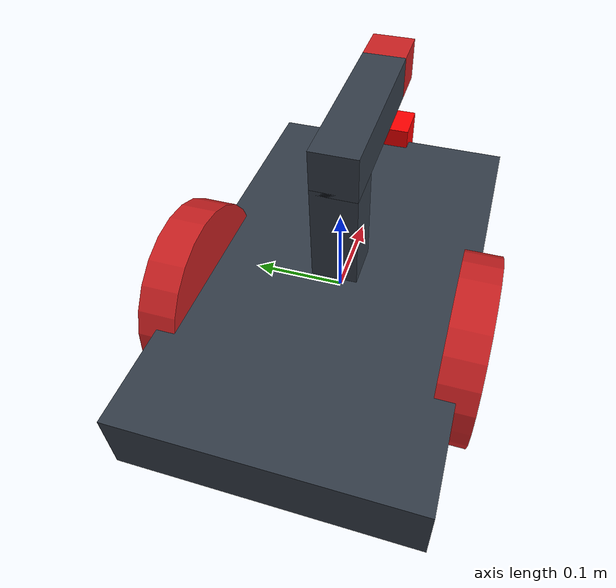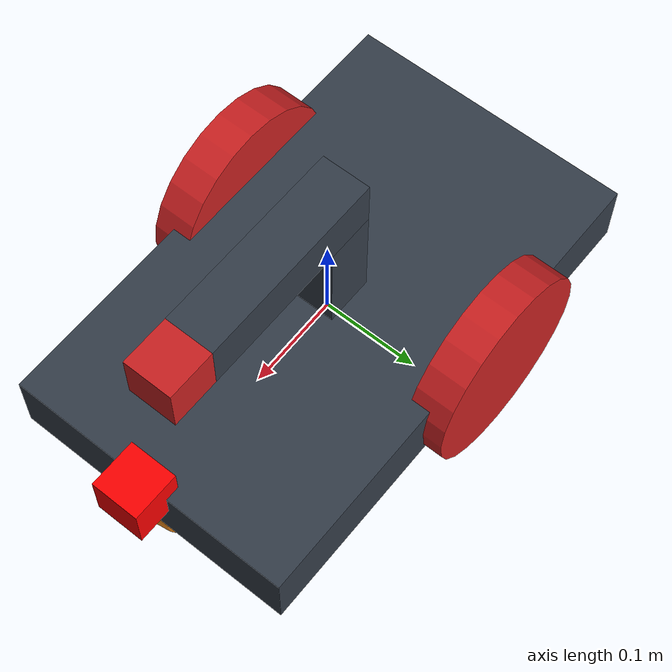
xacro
<?xml version="1.0"?>
<robot xmlns:xacro="http://www.ros.org/wiki/xacro" name="robot4_xacro">
<xacro:include filename="$(find assignment2_exprob)/urdf/robot4.gazebo"/>

	<xacro:property name="length_wheel" value="0.04" />
	<xacro:property name="radius_wheel" value="0.1" />

	<xacro:macro name="default_inertial" params="mass">
               <inertial>
                       <mass value="${mass}" />
                       <origin rpy="0 1.5707 1.5707" xyz="0 0 0"/>
                       <inertia ixx="0.000526666666667" ixy="0" ixz="0" iyy="0.000526666666667" iyz="0" izz="0.001"/>
               </inertial>
	</xacro:macro>

    <xacro:macro name="wheel_geometry">
		<geometry>
       			<cylinder length="${length_wheel}" radius="${radius_wheel}"/>
     	</geometry>
	</xacro:macro>

  <material name="black">
    <color rgba="0.0 0.0 0.0 1.0"/>
  </material>
  <material name="blue">
    <color rgba="0.203125 0.23828125 0.28515625 1.0"/>
  </material>
  <material name="green">
    <color rgba="0.0 0.8 0.0 1.0"/>
  </material>
  <material name="grey">
    <color rgba="0.2 0.2 0.2 1.0"/>
  </material>
  <material name="orange">
    <color rgba="1.0 0.423529411765 0.0392156862745 1.0"/>
  </material>
  <material name="brown">
    <color rgba="0.870588235294 0.811764705882 0.764705882353 1.0"/>
  </material>
  <material name="red">
    <color rgba="0.80078125 0.12890625 0.1328125 1.0"/>
  </material>
  <material name="white">
    <color rgba="1.0 1.0 1.0 1.0"/>
  </material>

	  <link name="link_chassis">
    <!-- pose and inertial -->
    <pose>0 0 0.1 0 0 0</pose>
    <inertial>
      <mass value="5"/>
      <origin rpy="0 0 0" xyz="0 0 0.1"/>
      <inertia ixx="0.0395416666667" ixy="0" ixz="0" iyy="0.106208333333" iyz="0" izz="0.106208333333"/>
    </inertial>
    <!-- body -->
    <collision name="collision_chassis">
      <geometry>
        <box size="0.5 0.3 0.07"/>
      </geometry>
    </collision>
    <visual>
      <origin rpy="0 0 0" xyz="0 0 0"/>
      <geometry>
        <box size="0.5 0.3 0.07"/>
      </geometry>
      <material name="blue"/>
    </visual>
    <!-- caster front -->
    <collision name="caster_front_collision">
      <origin rpy=" 0 0 0" xyz="0.35 0 -0.05"/>
      <geometry>
        <sphere radius="0.05"/>
      </geometry>
    </collision>
    <visual name="caster_front_visual">
      <origin rpy=" 0 0 0" xyz="0.2 0 -0.05"/>
      <geometry>
        <sphere radius="0.05"/>
      </geometry>
    </visual>
  </link>

   <link name="link_right_wheel">
    <xacro:default_inertial mass="0.2"/>
    <collision name="link_right_wheel_collision">
      <origin rpy="0 1.5707 1.5707" xyz="0 0 0"/>
      <xacro:wheel_geometry />
    </collision>
    <visual name="link_right_wheel_visual">
      <origin rpy="0 1.5707 1.5707" xyz="0 0 0"/>
      <xacro:wheel_geometry />
      <material name="red"/>
    </visual>
  </link>

   <link name="link_left_wheel">
    <xacro:default_inertial mass="0.2"/>
    <collision name="link_left_wheel_collision">
      <origin rpy="0 1.5707 1.5707" xyz="0 0 0"/>
      <xacro:wheel_geometry />
    </collision>
    <visual name="link_left_wheel_visual">
      <origin rpy="0 1.5707 1.5707" xyz="0 0 0"/>
      <xacro:wheel_geometry />
      <material name="red"/>
    </visual>
  </link>

  <joint name="joint_right_wheel" type="continuous">
    <origin rpy="0 0 0" xyz="-0.05 0.15 0"/>
    <child link="link_right_wheel"/>
    <parent link="link_chassis"/>
    <axis rpy="0 0 0" xyz="0 1 0"/>
    <limit effort="10000" velocity="1000"/>
    <joint_properties damping="1.0" friction="1.0"/>
  </joint>

  <joint name="joint_left_wheel" type="continuous">
    <origin rpy="0 0 0" xyz="-0.05 -0.15 0"/>
    <child link="link_left_wheel"/>
    <parent link="link_chassis"/>
    <axis rpy="0 0 0" xyz="0 1 0"/>
    <limit effort="10000" velocity="1000"/>
    <joint_properties damping="1.0" friction="1.0"/>
  </joint>

    <link name="support_camera_link_0">
	    <collision>
	      <origin xyz="0 0 0" rpy="0 0 0"/>
	      <geometry>
		<box size="0.05 0.05 0.18"/>
	      </geometry>
	    </collision>
	    <visual>
	      <origin xyz="0 0 0.05" rpy="0 0 0"/>
	      <geometry>
		<box size="0.05 0.05 0.18"/>
	      </geometry>
	      <material name="blue"/>

	    </visual>
	    <inertial>
	      <mass value="1e-5" />
	      <origin xyz="0 0 0.0" rpy="0 0 0"/>
	      <inertia ixx="1e-6" ixy="0" ixz="0" iyy="1e-6" iyz="0" izz="1e-6" />
	    </inertial> 02
  </link>

  <joint name="support_camera_joint_0" type="fixed">
	    <axis xyz="0 0 1" />
	    <origin xyz="0 0 0.01" rpy="0 0 0"/>
	    <child link="support_camera_link_0"/>
	    <parent link="link_chassis"/>
	 </joint>

  <link name="support_camera_link">
	    <collision>
	      <origin xyz="0 0 0.07" rpy="0 0 0"/>
	      <geometry>
		<box size="0.2 0.05 0.05"/>
	      </geometry>
	    </collision>
	    <visual>
	      <origin xyz="0.0 0 0.07" rpy="0 0 0"/>
	      <geometry>
		<box size="0.2 0.05 0.05"/>
	      </geometry>
	      <material name="blue"/>

	    </visual>
	    <inertial>
	      <mass value="1e-5" />
	      <origin xyz="0 0 0" rpy="0 0 0"/>
	      <inertia ixx="1e-6" ixy="0" ixz="0" iyy="1e-6" iyz="0" izz="1e-6" />
	    </inertial> 02
  </link>

  <joint name="support_camera_joint" type="continuous">
	    <axis xyz="0 0 1" />
	    <origin xyz="0.075 0 0.09" rpy="0 0 0"/>
	    <dynamics damping="0.1"/>
        <limit effort="10000" velocity="100" />
	    <child link="support_camera_link"/>
	    <parent link="support_camera_link_0"/>
	 </joint>

  <link name="camera_link">
	    <collision>
	      <origin xyz="0.05 0.05 0.05" rpy="0 0 0"/>
	      <geometry>
		<box size="0.05 0.05 0.05"/>
	      </geometry>
	    </collision>
	    <visual>
	      <origin xyz="0.00 0 0.00" rpy="0 0 0"/>
	      <geometry>
		<box size="0.05 0.05 0.05"/>
	      </geometry>
	      <material name="red"/>

	    </visual>
	   <xacro:default_inertial mass="0.02"/>
  </link>

  <joint name="camera_joint" type="fixed">
	    <axis xyz="0 1 0" />
        <origin xyz="0.125 0.0 0.07" rpy="0 0 0"/>
	    <child link="camera_link"/>
	    <parent link="support_camera_link"/>
	 </joint>

  <transmission name="camera_joint_trans">
	<type>transmission_interface/SimpleTransmission</type>
	<joint name="support_camera_joint">
		<hardwareInterface>hardware_interface/VelocityJointInterface</hardwareInterface>
	</joint>
	<actuator name="camera_motor">
		<hardwareInterface>hardware_interface/VelocityJointInterface</hardwareInterface>
		<mechanicalInterface>1</mechanicalInterface>
	</actuator>
   </transmission>

 <link name="hokuyo_link">
	    <collision>
	      <origin xyz="0 0 0.025" rpy="0 0 0"/>
	      <geometry>
		<box size="0.05 0.05 0.05"/>
	      </geometry>
	    </collision>
	    <visual>
	      <origin xyz="0 0 0.025" rpy="0 0 0"/>
	      <geometry>
		<box size="0.05 0.05 0.05"/>
	      </geometry>
	      <material name="red">
		<color rgba="1 0 0 1"/>
	      </material>
	    </visual>
	    <inertial>
	      <mass value="1e-5" />
	      <origin xyz="0 0 0" rpy="0 0 0"/>
	      <inertia ixx="1e-6" ixy="0" ixz="0" iyy="1e-6" iyz="0" izz="1e-6" />
	    </inertial>
 	 </link>

 	 <joint name="hokuyo_joint" type="fixed">
	    <axis xyz="0 1 0" />
	    <origin xyz="0.26 0 0.01" rpy="0 0 0"/>
	    <parent link="link_chassis"/>
	    <child link="hokuyo_link"/>
	 </joint>
</robot>
